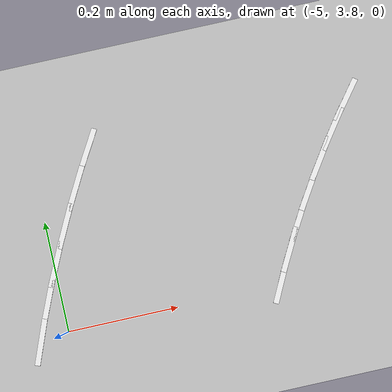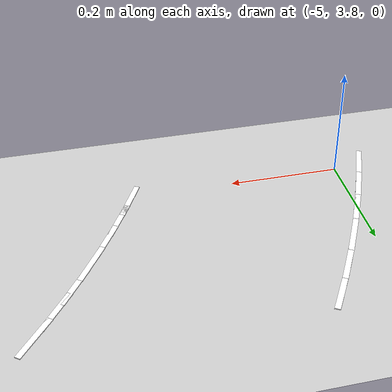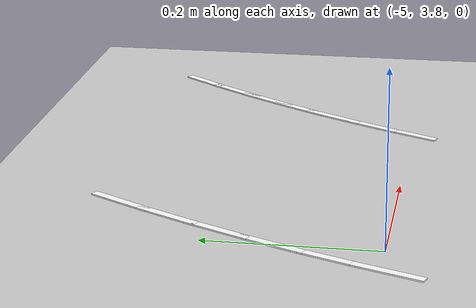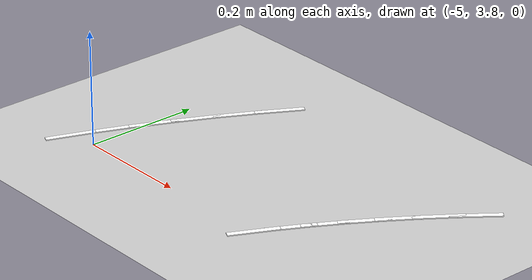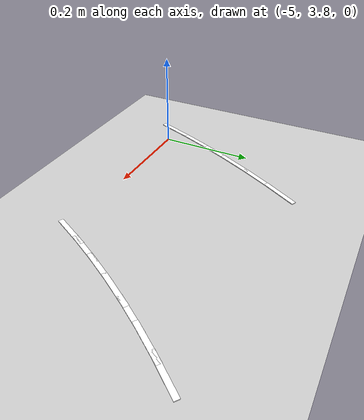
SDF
<sdf version="1.7">
 <world name="default">
  <model name="ground_plane">
   <static>1</static>
   <link name="link">
    <collision name="collision">
     <geometry><plane><normal>0 0 1</normal><size>100 100</size></plane></geometry>
     <surface>
      <contact><collide_bitmask>65535</collide_bitmask></contact>
      <friction><ode><mu>100</mu><mu2>50</mu2></ode></friction>
     </surface>
    </collision>
    <visual name="visual">
     <cast_shadows>0</cast_shadows>
     <geometry><plane><normal>0 0 1</normal><size>100 100</size></plane></geometry>
     <material>
      <script><uri>file://media/materials/scripts/gazebo.material</uri><name>Gazebo/Grey</name></script>
     </material>
    </visual>
   </link>
  </model>
  <model name="lane_line_left_278">
   <static>1</static>
   <link name="link">
    <pose>0 0 -0.004 0 -0 0</pose>
    <visual name="visual">
     <geometry><box><size>0.0841 0.01 0.01</size></box></geometry>
     <material><ambient>1 1 1 1</ambient><diffuse>1 1 1 1</diffuse></material>
    </visual>
    <collision name="collision"><geometry><box><size>0.0841 0.01 0.01</size></box></geometry></collision>
   </link>
   <pose>-4.4249 4.09942 0 0 0 -2.22797</pose>
  </model>
  <model name="lane_line_left_279">
   <static>1</static>
   <link name="link">
    <pose>0 0 -0.004 0 -0 0</pose>
    <visual name="visual">
     <geometry><box><size>0.0841 0.01 0.01</size></box></geometry>
     <material><ambient>1 1 1 1</ambient><diffuse>1 1 1 1</diffuse></material>
    </visual>
    <collision name="collision"><geometry><box><size>0.0841 0.01 0.01</size></box></geometry></collision>
   </link>
   <pose>-4.45941 4.05319 0 0 0 -2.19591</pose>
  </model>
  <model name="lane_line_left_280">
   <static>1</static>
   <link name="link">
    <pose>0 0 -0.004 0 -0 0</pose>
    <visual name="visual">
     <geometry><box><size>0.0841 0.01 0.01</size></box></geometry>
     <material><ambient>1 1 1 1</ambient><diffuse>1 1 1 1</diffuse></material>
    </visual>
    <collision name="collision"><geometry><box><size>0.0841 0.01 0.01</size></box></geometry></collision>
   </link>
   <pose>-4.49241 4.00587 0 0 0 -2.16385</pose>
  </model>
  <model name="lane_line_left_281">
   <static>1</static>
   <link name="link">
    <pose>0 0 -0.004 0 -0 0</pose>
    <visual name="visual">
     <geometry><box><size>0.0841 0.01 0.01</size></box></geometry>
     <material><ambient>1 1 1 1</ambient><diffuse>1 1 1 1</diffuse></material>
    </visual>
    <collision name="collision"><geometry><box><size>0.0841 0.01 0.01</size></box></geometry></collision>
   </link>
   <pose>-4.52389 3.95752 0 0 0 -2.1318</pose>
  </model>
  <model name="lane_line_left_282">
   <static>1</static>
   <link name="link">
    <pose>0 0 -0.004 0 -0 0</pose>
    <visual name="visual">
     <geometry><box><size>0.0841 0.01 0.01</size></box></geometry>
     <material><ambient>1 1 1 1</ambient><diffuse>1 1 1 1</diffuse></material>
    </visual>
    <collision name="collision"><geometry><box><size>0.0841 0.01 0.01</size></box></geometry></collision>
   </link>
   <pose>-4.55379 3.90819 0 0 0 -2.09974</pose>
  </model>
  <model name="lane_line_right_282">
   <static>1</static>
   <link name="link">
    <pose>0 0 -0.004 0 -0 0</pose>
    <visual name="visual">
     <geometry><box><size>0.0841 0.01 0.01</size></box></geometry>
     <material><ambient>1 1 1 1</ambient><diffuse>1 1 1 1</diffuse></material>
    </visual>
    <collision name="collision"><geometry><box><size>0.0841 0.01 0.01</size></box></geometry></collision>
   </link>
   <pose>-4.89913 4.11003 0 0 0 -2.09974</pose>
  </model>
  <model name="lane_line_left_283">
   <static>1</static>
   <link name="link">
    <pose>0 0 -0.004 0 -0 0</pose>
    <visual name="visual">
     <geometry><box><size>0.0841 0.01 0.01</size></box></geometry>
     <material><ambient>1 1 1 1</ambient><diffuse>1 1 1 1</diffuse></material>
    </visual>
    <collision name="collision"><geometry><box><size>0.0841 0.01 0.01</size></box></geometry></collision>
   </link>
   <pose>-4.5821 3.85792 0 0 0 -2.06768</pose>
  </model>
  <model name="lane_line_right_283">
   <static>1</static>
   <link name="link">
    <pose>0 0 -0.004 0 -0 0</pose>
    <visual name="visual">
     <geometry><box><size>0.0841 0.01 0.01</size></box></geometry>
     <material><ambient>1 1 1 1</ambient><diffuse>1 1 1 1</diffuse></material>
    </visual>
    <collision name="collision"><geometry><box><size>0.0841 0.01 0.01</size></box></geometry></collision>
   </link>
   <pose>-4.93373 4.04859 0 0 0 -2.06768</pose>
  </model>
  <model name="lane_line_left_284">
   <static>1</static>
   <link name="link">
    <pose>0 0 -0.004 0 -0 0</pose>
    <visual name="visual">
     <geometry><box><size>0.0841 0.01 0.01</size></box></geometry>
     <material><ambient>1 1 1 1</ambient><diffuse>1 1 1 1</diffuse></material>
    </visual>
    <collision name="collision"><geometry><box><size>0.0841 0.01 0.01</size></box></geometry></collision>
   </link>
   <pose>-4.60879 3.80677 0 0 0 -2.03562</pose>
  </model>
  <model name="lane_line_right_284">
   <static>1</static>
   <link name="link">
    <pose>0 0 -0.004 0 -0 0</pose>
    <visual name="visual">
     <geometry><box><size>0.0841 0.01 0.01</size></box></geometry>
     <material><ambient>1 1 1 1</ambient><diffuse>1 1 1 1</diffuse></material>
    </visual>
    <collision name="collision"><geometry><box><size>0.0841 0.01 0.01</size></box></geometry></collision>
   </link>
   <pose>-4.96635 3.98608 0 0 0 -2.03562</pose>
  </model>
  <model name="lane_line_right_285">
   <static>1</static>
   <link name="link">
    <pose>0 0 -0.004 0 -0 0</pose>
    <visual name="visual">
     <geometry><box><size>0.0841 0.01 0.01</size></box></geometry>
     <material><ambient>1 1 1 1</ambient><diffuse>1 1 1 1</diffuse></material>
    </visual>
    <collision name="collision"><geometry><box><size>0.0841 0.01 0.01</size></box></geometry></collision>
   </link>
   <pose>-4.99694 3.92254 0 0 0 -2.00357</pose>
  </model>
  <model name="lane_line_right_286">
   <static>1</static>
   <link name="link">
    <pose>0 0 -0.004 0 -0 0</pose>
    <visual name="visual">
     <geometry><box><size>0.0841 0.01 0.01</size></box></geometry>
     <material><ambient>1 1 1 1</ambient><diffuse>1 1 1 1</diffuse></material>
    </visual>
    <collision name="collision"><geometry><box><size>0.0841 0.01 0.01</size></box></geometry></collision>
   </link>
   <pose>-5.02549 3.85807 0 0 0 -1.97151</pose>
  </model>
  <model name="lane_line_right_287">
   <static>1</static>
   <link name="link">
    <pose>0 0 -0.004 0 -0 0</pose>
    <visual name="visual">
     <geometry><box><size>0.0841 0.01 0.01</size></box></geometry>
     <material><ambient>1 1 1 1</ambient><diffuse>1 1 1 1</diffuse></material>
    </visual>
    <collision name="collision"><geometry><box><size>0.0841 0.01 0.01</size></box></geometry></collision>
   </link>
   <pose>-5.05195 3.7927 0 0 0 -1.93945</pose>
  </model>
 </world>
</sdf>
